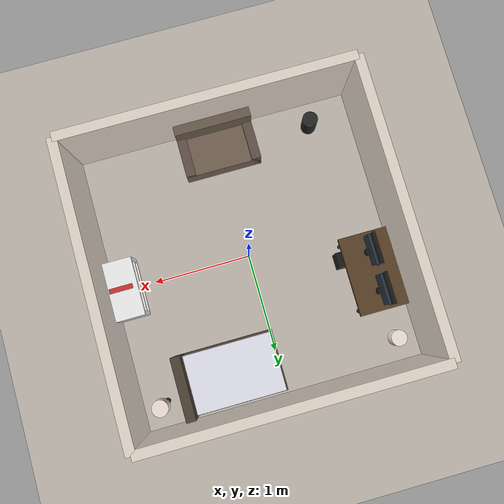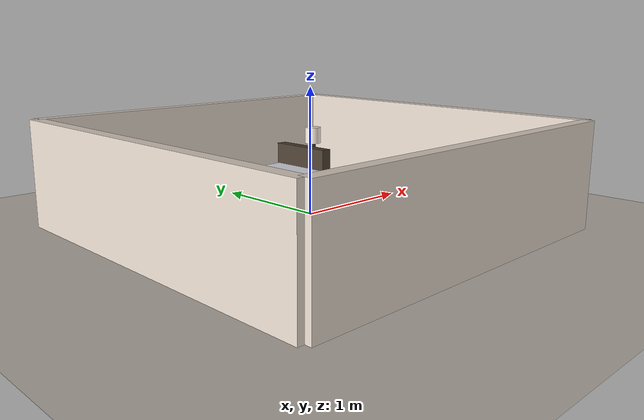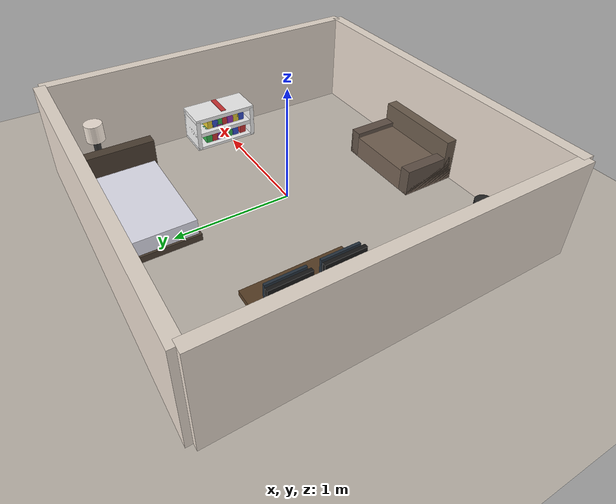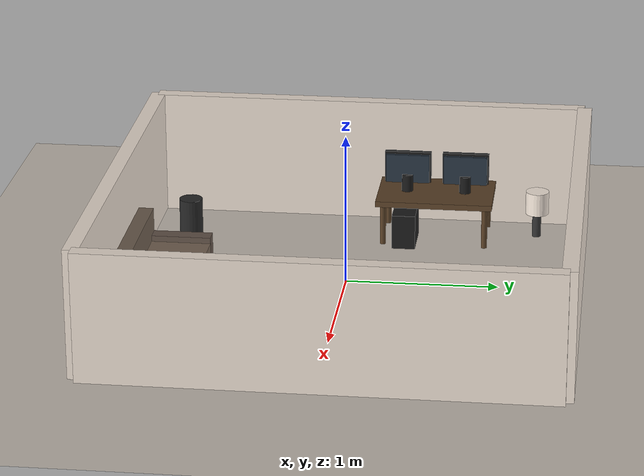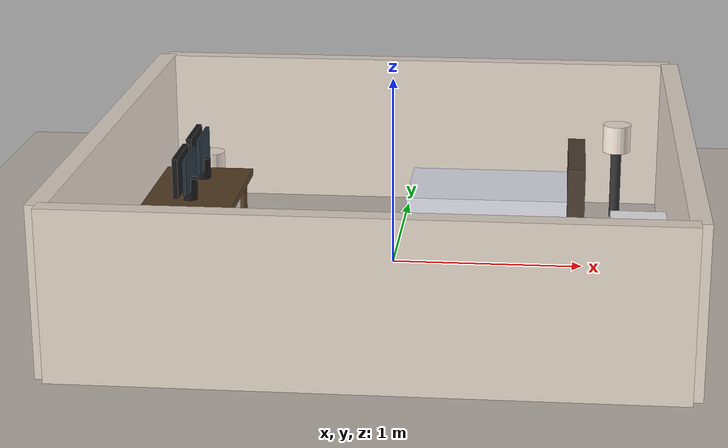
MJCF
<mujoco>
  <asset>
    <texture type="2d" name="groundplane" file="textures/floorboard.png"/>
    <material name="groundplane" texture="groundplane" texuniform="true" texrepeat="5 5"/>

    <material name="ceiling_material" rgba="0.7 0.7 0.7 1" emission="0.5"/>

    <material name="wall_material" rgba="0.9 0.85 0.8 1"/>
    <material name="couch_seat" rgba="0.45 0.38 0.32 1"/>
    <material name="couch_back" rgba="0.42 0.36 0.30 1"/>
    <material name="couch_arms" rgba="0.38 0.32 0.28 1"/>
    <material name="lamp_base" rgba="0.2 0.2 0.2 1"/>
    <material name="lamp_shade" rgba="0.95 0.9 0.85 1"/>
    <material name="desk_material" rgba="0.35 0.25 0.15 1"/>
    <material name="monitor_frame" rgba="0.1 0.1 0.1 1"/>
    <material name="monitor_screen" rgba="0.15 0.2 0.25 1"/>
    <material name="garbage_can" rgba="0.15 0.15 0.15 1"/>
    <material name="bookshelf_material" rgba="0.95 0.95 0.95 1"/>
    <material name="book_red" rgba="0.8 0.2 0.2 1"/>
    <material name="book_blue" rgba="0.2 0.3 0.8 1"/>
    <material name="book_green" rgba="0.2 0.7 0.3 1"/>
    <material name="book_yellow" rgba="0.9 0.8 0.2 1"/>
    <material name="book_purple" rgba="0.6 0.2 0.7 1"/>
  </asset>

  <worldbody>
    <!-- Grid of ceiling lights (3x3) - warm white -->
    <light name="light_0" pos="-0.8 -0.8 0.65" dir="0 0 -1" diffuse="0.6 0.55 0.5" specular="0.1 0.1 0.08" castshadow="false" active="true" cutoff="45" exponent="5"/>
    <light name="light_1" pos="0 -0.8 0.65" dir="0 0 -1" diffuse="0.6 0.55 0.5" specular="0.1 0.1 0.08" castshadow="false" active="true" cutoff="40" exponent="5"/>
    <light name="light_2" pos="0.8 -0.8 0.65" dir="0 0 -1" diffuse="0.6 0.55 0.5" specular="0.1 0.1 0.08" castshadow="false" active="true" cutoff="50" exponent="5"/>
    <light name="light_3" pos="-0.8 0 0.65" dir="0 0 -1" diffuse="0.6 0.55 0.5" specular="0.1 0.1 0.08" castshadow="false" active="true" cutoff="35" exponent="5"/>
    <light name="light_4" pos="0 0 0.65" dir="0 0 -1" diffuse="0.6 0.55 0.5" specular="0.1 0.1 0.08" castshadow="false" active="true" cutoff="55" exponent="5"/>
    <light name="light_5" pos="0.8 0 0.65" dir="0 0 -1" diffuse="0.6 0.55 0.5" specular="0.1 0.1 0.08" castshadow="false" active="true" cutoff="42" exponent="5"/>
    <light name="light_6" pos="-0.8 0.8 0.65" dir="0 0 -1" diffuse="0.6 0.55 0.5" specular="0.1 0.1 0.08" castshadow="false" active="true" cutoff="48" exponent="5"/>
    <light name="light_7" pos="0 0.8 0.65" dir="0 0 -1" diffuse="0.6 0.55 0.5" specular="0.1 0.1 0.08" castshadow="false" active="true" cutoff="38" exponent="5"/>
    <light name="light_8" pos="0.8 0.8 0.65" dir="0 0 -1" diffuse="0.6 0.55 0.5" specular="0.1 0.1 0.08" castshadow="false" active="true" cutoff="52" exponent="5"/>

    <!-- Additional colored accent lights with varied angles and cutoffs -->
    <light name="light_9" pos="-1.0 -1.0 0.5" dir="0.2 0.2 -1" diffuse="0.8 0.3 0.3" specular="0.1 0.05 0.05" castshadow="false" active="true" cutoff="25" exponent="5"/>
    <light name="light_10" pos="1.0 -1.0 0.5" dir="-0.2 0.2 -1" diffuse="0.3 0.3 0.9" specular="0.05 0.05 0.15" castshadow="false" active="true" cutoff="30" exponent="5"/>
    <light name="light_11" pos="-1.0 1.0 0.5" dir="0.2 -0.2 -1" diffuse="0.3 0.8 0.3" specular="0.05 0.1 0.05" castshadow="false" active="true" cutoff="28" exponent="5"/>
    <light name="light_12" pos="1.0 1.0 0.5" dir="-0.2 -0.2 -1" diffuse="0.7 0.7 0.3" specular="0.1 0.1 0.05" castshadow="false" active="true" cutoff="35" exponent="5"/>
    <light name="light_13" pos="0 -1.2 0.45" dir="0 0.3 -1" diffuse="0.5 0.2 0.7" specular="0.08 0.03 0.1" castshadow="false" active="true" cutoff="22" exponent="5"/>
    <light name="light_14" pos="0 1.2 0.45" dir="0 -0.3 -1" diffuse="0.2 0.6 0.8" specular="0.03 0.08 0.12" castshadow="false" active="true" cutoff="26" exponent="5"/>
    <light name="light_15" pos="-1.2 0 0.45" dir="0.3 0 -1" diffuse="0.9 0.4 0.2" specular="0.12 0.06 0.03" castshadow="false" active="true" cutoff="32" exponent="5"/>
    <light name="light_16" pos="1.2 0 0.45" dir="-0.3 0 -1" diffuse="0.2 0.8 0.5" specular="0.03 0.12 0.08" castshadow="false" active="true" cutoff="29" exponent="5"/>
    <light name="light_17" pos="-0.5 -0.5 0.6" dir="0.1 0.1 -1" diffuse="0.6 0.3 0.9" specular="0.08 0.04 0.12" castshadow="false" active="true" cutoff="38" exponent="5"/>
    <light name="light_18" pos="0.5 -0.5 0.6" dir="-0.1 0.1 -1" diffuse="0.9 0.6 0.2" specular="0.12 0.08 0.03" castshadow="false" active="true" cutoff="42" exponent="5"/>
    <light name="light_19" pos="-0.5 0.5 0.6" dir="0.1 -0.1 -1" diffuse="0.3 0.9 0.8" specular="0.04 0.12 0.1" castshadow="false" active="true" cutoff="36" exponent="5"/>
    <light name="light_20" pos="0.5 0.5 0.6" dir="-0.1 -0.1 -1" diffuse="0.8 0.2 0.4" specular="0.1 0.03 0.06" castshadow="false" active="true" cutoff="44" exponent="5"/>
    <light name="light_21" pos="0 0 0.55" dir="0.15 0.15 -1" diffuse="0.4 0.5 0.9" specular="0.06 0.08 0.12" castshadow="false" active="true" cutoff="48" exponent="5"/>
    <light name="light_22" pos="-0.6 0.3 0.58" dir="0.2 -0.1 -1" diffuse="0.9 0.3 0.6" specular="0.12 0.04 0.08" castshadow="false" active="true" cutoff="34" exponent="5"/>
    <light name="light_23" pos="0.6 -0.3 0.58" dir="-0.2 0.1 -1" diffuse="0.3 0.7 0.3" specular="0.04 0.1 0.04" castshadow="false" active="true" cutoff="40" exponent="5"/>
    <light name="light_24" pos="-0.3 0.6 0.52" dir="0.1 -0.2 -1" diffuse="0.7 0.8 0.4" specular="0.1 0.12 0.06" castshadow="false" active="true" cutoff="46" exponent="5"/>
    <light name="light_25" pos="0.3 -0.6 0.52" dir="-0.1 0.2 -1" diffuse="0.5 0.3 0.8" specular="0.08 0.04 0.1" castshadow="false" active="true" cutoff="31" exponent="5"/>
    <light name="light_26" pos="-0.9 -0.4 0.54" dir="0.25 0.15 -1" diffuse="0.2 0.9 0.6" specular="0.03 0.12 0.08" castshadow="false" active="true" cutoff="37" exponent="5"/>
    <light name="light_27" pos="0.9 0.4 0.54" dir="-0.25 -0.15 -1" diffuse="0.8 0.5 0.3" specular="0.1 0.08 0.04" castshadow="false" active="true" cutoff="43" exponent="5"/>
    <light name="light_28" pos="0.4 0.9 0.56" dir="-0.15 -0.25 -1" diffuse="0.4 0.3 0.95" specular="0.06 0.04 0.14" castshadow="false" active="true" cutoff="27" exponent="5"/>

    <!-- Corner lamp lights -->
    <light name="lamp_light_1" pos="1.2 1.2 0.4" dir="0 0 -1" diffuse="0.5 0.45 0.4" specular="0.2 0.2 0.15" castshadow="false" attenuation="0.5 0.5 0.5"/>
    <light name="lamp_light_2" pos="-1.2 1.2 0.4" dir="0 0 -1" diffuse="0.45 0.4 0.35" specular="0.15 0.15 0.1" castshadow="false" attenuation="0.5 0.5 0.5"/>

    <geom name="floor" size="0 0 0.05" pos="0 0 -0.1" type="plane" material="groundplane"/>

    <!-- Room walls - light gray -->
    <geom name="wall_north" type="box" size="1.5 0.05 0.5" pos="0 1.5 0.25" material="wall_material"/>
    <geom name="wall_south" type="box" size="1.5 0.05 0.5" pos="0 -1.5 0.25" material="wall_material"/>
    <geom name="wall_east" type="box" size="0.05 1.5 0.5" pos="1.5 0 0.25" material="wall_material"/>
    <geom name="wall_west" type="box" size="0.05 1.5 0.5" pos="-1.5 0 0.25" material="wall_material"/>

    <!-- Ceiling -->
    <geom name="ceiling" type="plane" size="1.5 1.5 0.01" pos="0 0 0.7" zaxis="0 0 -1" material="ceiling_material"/>

    <!-- Simple geometric couch against south wall -->
    <body name="couch" pos="0 -1.2 0.0">
      <!-- Seat base -->
      <geom type="box" size="0.4 0.25 0.1" pos="0 0 0.0" material="couch_seat"/>
      <!-- Invisible slanted collision box on top -->
      <geom type="box" size="0.4 0.25 0.02" pos="0 0 0.12" rgba="0 0 0 0" euler="0.3 0.3 0"/>
      <!-- Back rest -->
      <geom type="box" size="0.4 0.05 0.15" pos="0 -0.2 0.15" material="couch_back"/>
      <!-- Invisible slanted collision box on backrest -->
      <geom type="box" size="0.4 0.05 0.02" pos="0 -0.2 0.32" rgba="0 0 0 0" euler="0.3 0 0"/>
      <!-- Left armrest -->
      <geom type="box" size="0.05 0.25 0.12" pos="-0.35 0 0.02" material="couch_arms"/>
      <!-- Invisible slanted collision box on left armrest -->
      <geom type="box" size="0.05 0.25 0.02" pos="-0.35 0 0.16" rgba="0 0 0 0" euler="0 0.3 0"/>
      <!-- Right armrest -->
      <geom type="box" size="0.05 0.25 0.12" pos="0.35 0 0.02" material="couch_arms"/>
      <!-- Invisible slanted collision box on right armrest -->
      <geom type="box" size="0.05 0.25 0.02" pos="0.35 0 0.16" rgba="0 0 0 0" euler="0 0.3 0"/>
    </body>

    <!-- Corner lamps -->
    <body name="lamp1" pos="1.2 1.2 0.0">
      <!-- Base (taller) -->
      <geom type="cylinder" size="0.03 0.25" pos="0 0 0.125" material="lamp_base"/>
      <!-- Shade -->
      <geom type="cylinder" size="0.08 0.08" pos="0 0 0.375" material="lamp_shade"/>
    </body>

    <body name="lamp2" pos="-1.2 1.2 0.0">
      <!-- Base -->
      <geom type="cylinder" size="0.03 0.15" pos="0 0 0.05" material="lamp_base"/>
      <!-- Shade -->
      <geom type="cylinder" size="0.08 0.08" pos="0 0 0.15" material="lamp_shade"/>
    </body>

    <!-- Simple bed against north wall (rotated 90 degrees) -->
    <body name="bed" pos="0.5 1.1 0.0">
      <!-- Bed frame -->
      <geom type="box" size="0.52 0.32 0.03" pos="0 0 -0.07" rgba="0.3 0.25 0.2 1"/>
      <!-- Mattress -->
      <geom type="box" size="0.5 0.3 0.1" pos="0 0 0.0" rgba="0.9 0.9 0.95 1"/>
      <!-- Invisible slanted collision box on mattress (increased slant and z-size) -->
      <geom type="box" size="0.5 0.3 0.08" pos="0 0 0.14" rgba="0 0 0 0" euler="0.5 0.5 0"/>
      <!-- Headboard -->
      <geom type="box" size="0.05 0.32 0.2" pos="0.47 0 0.1" rgba="0.3 0.25 0.2 1"/>
    </body>

    <!-- White bookshelf against east wall (flipped 180 degrees) -->
    <body name="bookshelf" pos="1.3 0.0 -0.1">
      <!-- Shelf frame - bottom -->
      <geom type="box" size="0.15 0.3 0.02" pos="0 0 0.0" material="bookshelf_material"/>
      <!-- Shelf frame - middle -->
      <geom type="box" size="0.15 0.3 0.02" pos="0 0 0.15" material="bookshelf_material"/>
      <!-- Shelf frame - top -->
      <geom type="box" size="0.15 0.3 0.02" pos="0 0 0.3" material="bookshelf_material"/>
      <!-- Left side -->
      <geom type="box" size="0.15 0.02 0.15" pos="0 -0.28 0.15" material="bookshelf_material"/>
      <!-- Right side -->
      <geom type="box" size="0.15 0.02 0.15" pos="0 0.28 0.15" material="bookshelf_material"/>
      <!-- Back panel (flipped to face into room) -->
      <geom type="box" size="0.02 0.3 0.15" pos="0.13 0 0.15" material="bookshelf_material"/>

      <!-- Books on bottom shelf (flipped positions) -->
      <geom type="box" size="0.12 0.03 0.06" pos="0.02 -0.2 0.07" material="book_red"/>
      <geom type="box" size="0.12 0.03 0.08" pos="0.02 -0.12 0.09" material="book_blue"/>
      <geom type="box" size="0.12 0.025 0.07" pos="0.02 -0.06 0.075" material="book_green"/>
      <geom type="box" size="0.12 0.035 0.06" pos="0.02 0.0 0.07" material="book_yellow"/>
      <geom type="box" size="0.12 0.03 0.09" pos="0.02 0.05 0.095" material="book_purple"/>
      <geom type="box" size="0.12 0.03 0.07" pos="0.02 0.1 0.075" material="book_red"/>
      <geom type="box" size="0.12 0.03 0.08" pos="0.02 0.16 0.09" material="book_green"/>

      <!-- Books on middle shelf (flipped positions) -->
      <geom type="box" size="0.12 0.035 0.07" pos="0.02 -0.18 0.22" material="book_blue"/>
      <geom type="box" size="0.12 0.03 0.06" pos="0.02 -0.13 0.21" material="book_yellow"/>
      <geom type="box" size="0.12 0.03 0.08" pos="0.02 -0.07 0.23" material="book_purple"/>
      <geom type="box" size="0.12 0.025 0.09" pos="0.02 -0.01 0.235" material="book_red"/>
      <geom type="box" size="0.12 0.035 0.07" pos="0.02 0.04 0.22" material="book_green"/>
      <geom type="box" size="0.12 0.03 0.08" pos="0.02 0.09 0.23" material="book_blue"/>
      <geom type="box" size="0.12 0.03 0.06" pos="0.02 0.14 0.21" material="book_yellow"/>
    </body>

    <!-- Desk against west wall -->
    <body name="desk" pos="-1.15 0.5 0.0">
      <!-- Legs -->
      <geom type="cylinder" size="0.02 0.18" pos="-0.2 -0.35 0.0" material="desk_material"/>
      <geom type="cylinder" size="0.02 0.18" pos="0.2 -0.35 0.0" material="desk_material"/>
      <geom type="cylinder" size="0.02 0.18" pos="-0.2 0.35 0.0" material="desk_material"/>
      <geom type="cylinder" size="0.02 0.18" pos="0.2 0.35 0.0" material="desk_material"/>
      <!-- Desktop -->
      <geom type="box" size="0.25 0.4 0.02" pos="0 0 0.2" material="desk_material"/>
      <!-- Computer under desk (rotated 90 degrees) -->
      <geom type="box" size="0.15 0.08 0.12" pos="0.15 -0.2 0.02" rgba="0.1 0.1 0.1 1"/>
    </body>

    <!-- Monitors on desk -->
    <body name="monitor1" pos="-1.15 0.7 0.22">
      <!-- Stand -->
      <geom type="cylinder" size="0.04 0.06" pos="0 0 0.06" material="monitor_frame"/>
      <!-- Screen (rotated to face outward from wall) -->
      <geom type="box" size="0.01 0.15 0.1" pos="0 0 0.16" material="monitor_screen"/>
      <!-- Frame -->
      <geom type="box" size="0.015 0.16 0.11" pos="-0.05 0 0.16" material="monitor_frame"/>
    </body>

    <body name="monitor2" pos="-1.15 0.3 0.22">
      <!-- Stand -->
      <geom type="cylinder" size="0.04 0.06" pos="0 0 0.06" material="monitor_frame"/>
      <!-- Screen (rotated to face outward from wall) -->
      <geom type="box" size="0.01 0.15 0.1" pos="0 0 0.16" material="monitor_screen"/>
      <!-- Frame -->
      <geom type="box" size="0.015 0.16 0.11" pos="-0.05 0 0.16" material="monitor_frame"/>
    </body>

    <!-- Small black garbage can -->
    <body name="garbage_can" pos="-1.0 -1.2 0.0">
      <geom type="cylinder" size="0.08 0.15" pos="0 0 0.0" material="garbage_can"/>
    </body>
  </worldbody>
</mujoco>
